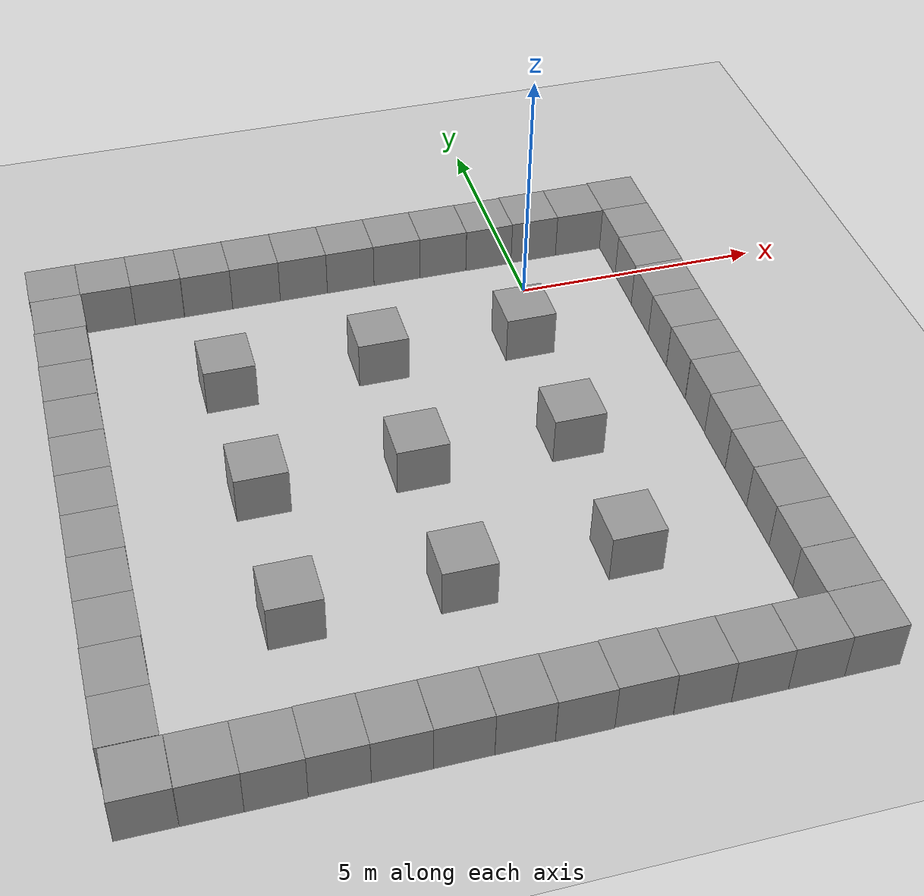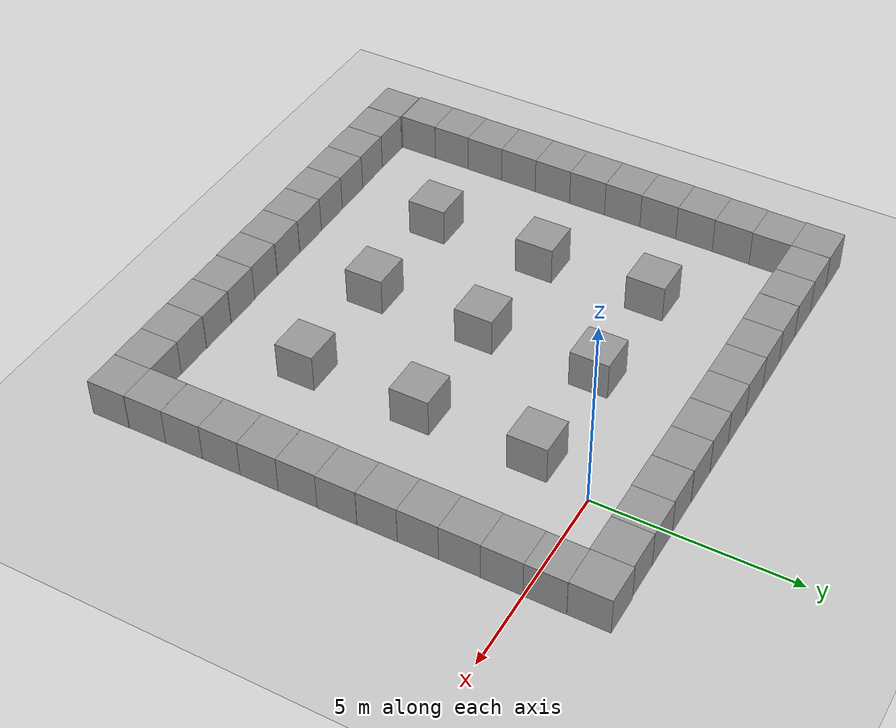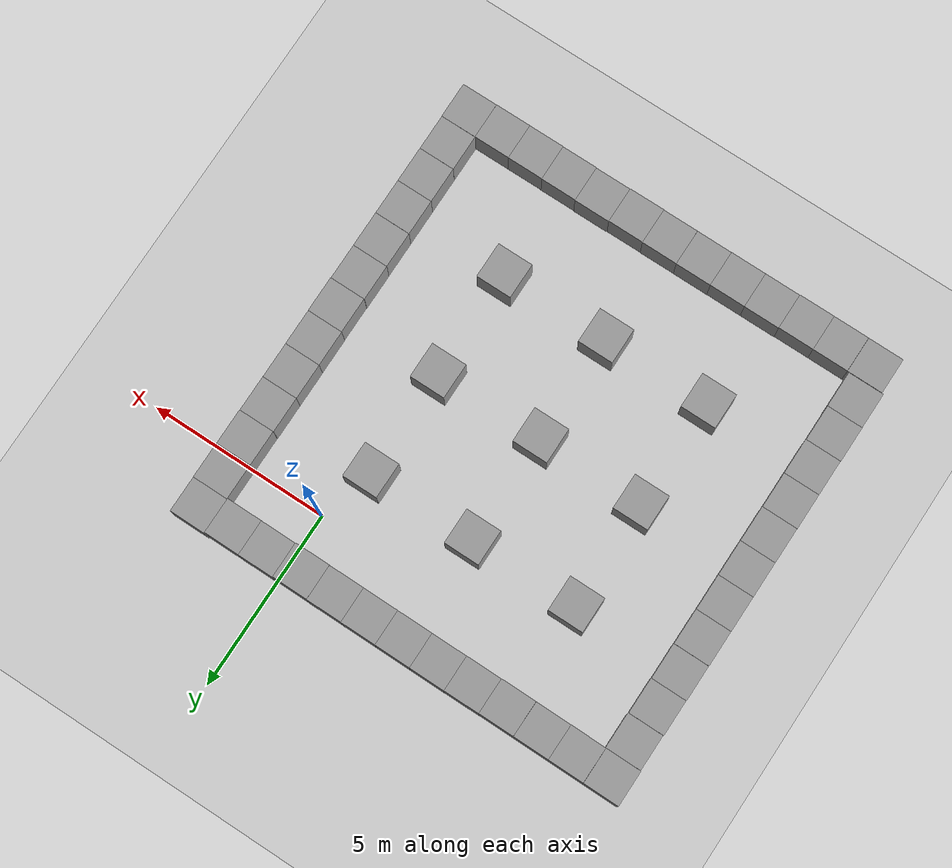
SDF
<sdf version="1.6">
 <world name="default">
  <light name="sun" type="directional">
   <pose>0 0 10 0 -0 0</pose>
   <diffuse>0.8 0.8 0.8 1</diffuse>
   <specular>0.1 0.1 0.1 1</specular>
   <attenuation>
    <range>1000</range>
    <constant>0.9</constant>
    <linear>0.01</linear>
    <quadratic>0.001</quadratic>
   </attenuation>
   <direction>-0.5 0.5 -1</direction>
  </light>
  <model name="ground_plane">
   <static>1</static>
   <link name="link">
    <collision name="collision">
     <geometry><plane><normal>0 0 1</normal><size>100 100</size></plane></geometry>
     <surface><friction><ode><mu>100</mu><mu2>50</mu2></ode></friction></surface>
    </collision>
    <visual name="visual">
     <cast_shadows>0</cast_shadows>
     <geometry><plane><normal>0 0 1</normal><size>100 100</size></plane></geometry>
     <material>
      <script><uri>file://media/materials/scripts/gazebo.material</uri><name>Gazebo/Grey</name></script>
     </material>
    </visual>
   </link>
  </model>
  <gravity>0 0 -9.8</gravity>
  <magnetic_field>6e-06 2.3e-05 -4.2e-05</magnetic_field>
  <atmosphere type="adiabatic"/>
  <physics name="default_physics" default="0" type="ode">
   <max_step_size>0.001</max_step_size>
   <real_time_factor>1</real_time_factor>
   <real_time_update_rate>1000</real_time_update_rate>
  </physics>
  <scene><ambient>0.4 0.4 0.4 1</ambient><background>0.7 0.7 0.7 1</background><shadows>1</shadows></scene>
  <spherical_coordinates>
   <surface_model>EARTH_WGS84</surface_model>
   <latitude_deg>0</latitude_deg>
   <longitude_deg>0</longitude_deg>
   <elevation>0</elevation>
   <heading_deg>0</heading_deg>
  </spherical_coordinates>
  <model name="unit_box_0_3">
   <pose>-0.485006 1.46415 0.5 0 0 -0.000417</pose>
   <link name="link">
    <inertial>
     <mass>1</mass>
     <inertia>
      <ixx>0.166667</ixx>
      <ixy>0</ixy>
      <ixz>0</ixz>
      <iyy>0.166667</iyy>
      <iyz>0</iyz>
      <izz>0.166667</izz>
     </inertia>
    </inertial>
    <collision name="collision"><geometry><box><size>1 1 1</size></box></geometry></collision>
    <visual name="visual">
     <geometry><box><size>1 1 1</size></box></geometry>
     <material>
      <script><name>Gazebo/Grey</name><uri>file://media/materials/scripts/gazebo.material</uri></script>
     </material>
    </visual>
   </link>
  </model>
  <model name="unit_box_0_4">
   <pose>0.515009 1.47743 0.5 0 0 -0.000413</pose>
   <link name="link">
    <inertial>
     <mass>1</mass>
     <inertia>
      <ixx>0.166667</ixx>
      <ixy>0</ixy>
      <ixz>0</ixz>
      <iyy>0.166667</iyy>
      <iyz>0</iyz>
      <izz>0.166667</izz>
     </inertia>
    </inertial>
    <collision name="collision"><geometry><box><size>1 1 1</size></box></geometry></collision>
    <visual name="visual">
     <geometry><box><size>1 1 1</size></box></geometry>
     <material>
      <script><name>Gazebo/Grey</name><uri>file://media/materials/scripts/gazebo.material</uri></script>
     </material>
    </visual>
   </link>
  </model>
  <model name="unit_box_0_5">
   <pose>1.51501 1.4753 0.499995 -1e-05 -0 -0.000414</pose>
   <link name="link">
    <inertial>
     <mass>1</mass>
     <inertia>
      <ixx>0.166667</ixx>
      <ixy>0</ixy>
      <ixz>0</ixz>
      <iyy>0.166667</iyy>
      <iyz>0</iyz>
      <izz>0.166667</izz>
     </inertia>
    </inertial>
    <collision name="collision"><geometry><box><size>1 1 1</size></box></geometry></collision>
    <visual name="visual">
     <geometry><box><size>1 1 1</size></box></geometry>
     <material>
      <script><name>Gazebo/Grey</name><uri>file://media/materials/scripts/gazebo.material</uri></script>
     </material>
    </visual>
   </link>
  </model>
  <model name="unit_box_0_6">
   <pose>-1.4854 1.46961 0.499995 0 1e-05 -0.001221</pose>
   <link name="link">
    <inertial>
     <mass>1</mass>
     <inertia>
      <ixx>0.166667</ixx>
      <ixy>0</ixy>
      <ixz>0</ixz>
      <iyy>0.166667</iyy>
      <iyz>0</iyz>
      <izz>0.166667</izz>
     </inertia>
    </inertial>
    <collision name="collision"><geometry><box><size>1 1 1</size></box></geometry></collision>
    <visual name="visual">
     <geometry><box><size>1 1 1</size></box></geometry>
     <material>
      <script><name>Gazebo/Grey</name><uri>file://media/materials/scripts/gazebo.material</uri></script>
     </material>
    </visual>
   </link>
  </model>
  <model name="unit_box_0_7">
   <pose>-2.48543 1.47308 0.499995 -1e-05 -0 -0.001284</pose>
   <link name="link">
    <inertial>
     <mass>1</mass>
     <inertia>
      <ixx>0.166667</ixx>
      <ixy>0</ixy>
      <ixz>0</ixz>
      <iyy>0.166667</iyy>
      <iyz>0</iyz>
      <izz>0.166667</izz>
     </inertia>
    </inertial>
    <collision name="collision"><geometry><box><size>1 1 1</size></box></geometry></collision>
    <visual name="visual">
     <geometry><box><size>1 1 1</size></box></geometry>
     <material>
      <script><name>Gazebo/Grey</name><uri>file://media/materials/scripts/gazebo.material</uri></script>
     </material>
    </visual>
   </link>
  </model>
  <model name="unit_box_0_8">
   <pose>2.51506 1.4973 0.499995 -1e-05 -0 -0.000355</pose>
   <link name="link">
    <inertial>
     <mass>1</mass>
     <inertia>
      <ixx>0.166667</ixx>
      <ixy>0</ixy>
      <ixz>0</ixz>
      <iyy>0.166667</iyy>
      <iyz>0</iyz>
      <izz>0.166667</izz>
     </inertia>
    </inertial>
    <collision name="collision"><geometry><box><size>1 1 1</size></box></geometry></collision>
    <visual name="visual">
     <geometry><box><size>1 1 1</size></box></geometry>
     <material>
      <script><name>Gazebo/Grey</name><uri>file://media/materials/scripts/gazebo.material</uri></script>
     </material>
    </visual>
   </link>
  </model>
  <model name="unit_box_0_9">
   <pose>-3.48544 1.47526 0.499995 -0 1e-05 -0.001293</pose>
   <link name="link">
    <inertial>
     <mass>1</mass>
     <inertia>
      <ixx>0.166667</ixx>
      <ixy>0</ixy>
      <ixz>0</ixz>
      <iyy>0.166667</iyy>
      <iyz>0</iyz>
      <izz>0.166667</izz>
     </inertia>
    </inertial>
    <collision name="collision"><geometry><box><size>1 1 1</size></box></geometry></collision>
    <visual name="visual">
     <geometry><box><size>1 1 1</size></box></geometry>
     <material>
      <script><name>Gazebo/Grey</name><uri>file://media/materials/scripts/gazebo.material</uri></script>
     </material>
    </visual>
   </link>
  </model>
  <model name="unit_box_0_10">
   <pose>-4.48546 1.47865 0.499995 0 -1e-05 -0.001316</pose>
   <link name="link">
    <inertial>
     <mass>1</mass>
     <inertia>
      <ixx>0.166667</ixx>
      <ixy>0</ixy>
      <ixz>0</ixz>
      <iyy>0.166667</iyy>
      <iyz>0</iyz>
      <izz>0.166667</izz>
     </inertia>
    </inertial>
    <collision name="collision"><geometry><box><size>1 1 1</size></box></geometry></collision>
    <visual name="visual">
     <geometry><box><size>1 1 1</size></box></geometry>
     <material>
      <script><name>Gazebo/Grey</name><uri>file://media/materials/scripts/gazebo.material</uri></script>
     </material>
    </visual>
   </link>
  </model>
  <model name="unit_box_0_11">
   <pose>-5.48546 1.47611 0.5 0 0 -0.001314</pose>
   <link name="link">
    <inertial>
     <mass>1</mass>
     <inertia>
      <ixx>0.166667</ixx>
      <ixy>0</ixy>
      <ixz>0</ixz>
      <iyy>0.166667</iyy>
      <iyz>0</iyz>
      <izz>0.166667</izz>
     </inertia>
    </inertial>
    <collision name="collision"><geometry><box><size>1 1 1</size></box></geometry></collision>
    <visual name="visual">
     <geometry><box><size>1 1 1</size></box></geometry>
     <material>
      <script><name>Gazebo/Grey</name><uri>file://media/materials/scripts/gazebo.material</uri></script>
     </material>
    </visual>
   </link>
  </model>
  <model name="unit_box_0_28">
   <pose>2.51081 -6.50288 0.499995 1e-05 -0 -7.6e-05</pose>
   <link name="link">
    <inertial>
     <mass>1</mass>
     <inertia>
      <ixx>0.166667</ixx>
      <ixy>0</ixy>
      <ixz>0</ixz>
      <iyy>0.166667</iyy>
      <iyz>0</iyz>
      <izz>0.166667</izz>
     </inertia>
    </inertial>
    <collision name="collision"><geometry><box><size>1 1 1</size></box></geometry></collision>
    <visual name="visual">
     <geometry><box><size>1 1 1</size></box></geometry>
     <material>
      <script><name>Gazebo/Grey</name><uri>file://media/materials/scripts/gazebo.material</uri></script>
     </material>
    </visual>
   </link>
  </model>
  <model name="unit_box_0_29">
   <pose>2.50829 -5.50283 0.499995 -1e-05 -0 -0.000155</pose>
   <link name="link">
    <inertial>
     <mass>1</mass>
     <inertia>
      <ixx>0.166667</ixx>
      <ixy>0</ixy>
      <ixz>0</ixz>
      <iyy>0.166667</iyy>
      <iyz>0</iyz>
      <izz>0.166667</izz>
     </inertia>
    </inertial>
    <collision name="collision"><geometry><box><size>1 1 1</size></box></geometry></collision>
    <visual name="visual">
     <geometry><box><size>1 1 1</size></box></geometry>
     <material>
      <script><name>Gazebo/Grey</name><uri>file://media/materials/scripts/gazebo.material</uri></script>
     </material>
    </visual>
   </link>
  </model>
  <model name="unit_box_0_30">
   <pose>2.51749 -4.50282 0.499995 9e-06 0 -0.000176</pose>
   <link name="link">
    <inertial>
     <mass>1</mass>
     <inertia>
      <ixx>0.166667</ixx>
      <ixy>0</ixy>
      <ixz>0</ixz>
      <iyy>0.166667</iyy>
      <iyz>0</iyz>
      <izz>0.166667</izz>
     </inertia>
    </inertial>
    <collision name="collision"><geometry><box><size>1 1 1</size></box></geometry></collision>
    <visual name="visual">
     <geometry><box><size>1 1 1</size></box></geometry>
     <material>
      <script><name>Gazebo/Grey</name><uri>file://media/materials/scripts/gazebo.material</uri></script>
     </material>
    </visual>
   </link>
  </model>
  <model name="unit_box_0_31">
   <pose>2.51174 -3.50281 0.499995 -9e-06 -0 -0.000174</pose>
   <link name="link">
    <inertial>
     <mass>1</mass>
     <inertia>
      <ixx>0.166667</ixx>
      <ixy>0</ixy>
      <ixz>0</ixz>
      <iyy>0.166667</iyy>
      <iyz>0</iyz>
      <izz>0.166667</izz>
     </inertia>
    </inertial>
    <collision name="collision"><geometry><box><size>1 1 1</size></box></geometry></collision>
    <visual name="visual">
     <geometry><box><size>1 1 1</size></box></geometry>
     <material>
      <script><name>Gazebo/Grey</name><uri>file://media/materials/scripts/gazebo.material</uri></script>
     </material>
    </visual>
   </link>
  </model>
  <model name="unit_box_0_32">
   <pose>2.50817 -2.50282 0.499995 1e-05 -0 -0.000177</pose>
   <link name="link">
    <inertial>
     <mass>1</mass>
     <inertia>
      <ixx>0.166667</ixx>
      <ixy>0</ixy>
      <ixz>0</ixz>
      <iyy>0.166667</iyy>
      <iyz>0</iyz>
      <izz>0.166667</izz>
     </inertia>
    </inertial>
    <collision name="collision"><geometry><box><size>1 1 1</size></box></geometry></collision>
    <visual name="visual">
     <geometry><box><size>1 1 1</size></box></geometry>
     <material>
      <script><name>Gazebo/Grey</name><uri>file://media/materials/scripts/gazebo.material</uri></script>
     </material>
    </visual>
   </link>
  </model>
  <model name="unit_box_0_34">
   <pose>2.50945 -1.5028 0.499995 -1e-05 -0 -0.000172</pose>
   <link name="link">
    <inertial>
     <mass>1</mass>
     <inertia>
      <ixx>0.166667</ixx>
      <ixy>0</ixy>
      <ixz>0</ixz>
      <iyy>0.166667</iyy>
      <iyz>0</iyz>
      <izz>0.166667</izz>
     </inertia>
    </inertial>
    <collision name="collision"><geometry><box><size>1 1 1</size></box></geometry></collision>
    <visual name="visual">
     <geometry><box><size>1 1 1</size></box></geometry>
     <material>
      <script><name>Gazebo/Grey</name><uri>file://media/materials/scripts/gazebo.material</uri></script>
     </material>
    </visual>
   </link>
  </model>
  <model name="unit_box_0_35">
   <pose>2.51729 -0.502807 0.499995 1e-05 -0 -0.000177</pose>
   <link name="link">
    <inertial>
     <mass>1</mass>
     <inertia>
      <ixx>0.166667</ixx>
      <ixy>0</ixy>
      <ixz>0</ixz>
      <iyy>0.166667</iyy>
      <iyz>0</iyz>
      <izz>0.166667</izz>
     </inertia>
    </inertial>
    <collision name="collision"><geometry><box><size>1 1 1</size></box></geometry></collision>
    <visual name="visual">
     <geometry><box><size>1 1 1</size></box></geometry>
     <material>
      <script><name>Gazebo/Grey</name><uri>file://media/materials/scripts/gazebo.material</uri></script>
     </material>
    </visual>
   </link>
  </model>
  <model name="unit_box_0_36">
   <pose>2.52058 0.497204 0.499995 1e-05 -0 -0.000199</pose>
   <link name="link">
    <inertial>
     <mass>1</mass>
     <inertia>
      <ixx>0.166667</ixx>
      <ixy>0</ixy>
      <ixz>0</ixz>
      <iyy>0.166667</iyy>
      <iyz>0</iyz>
      <izz>0.166667</izz>
     </inertia>
    </inertial>
    <collision name="collision"><geometry><box><size>1 1 1</size></box></geometry></collision>
    <visual name="visual">
     <geometry><box><size>1 1 1</size></box></geometry>
     <material>
      <script><name>Gazebo/Grey</name><uri>file://media/materials/scripts/gazebo.material</uri></script>
     </material>
    </visual>
   </link>
  </model>
  <model name="unit_box_0">
   <pose>-0.515201 -1.52723 0.499995 1e-05 -0 0</pose>
   <link name="link">
    <inertial>
     <mass>1</mass>
     <inertia>
      <ixx>0.166667</ixx>
      <ixy>0</ixy>
      <ixz>0</ixz>
      <iyy>0.166667</iyy>
      <iyz>0</iyz>
      <izz>0.166667</izz>
     </inertia>
    </inertial>
    <collision name="collision"><geometry><box><size>1 1 1</size></box></geometry></collision>
    <visual name="visual">
     <geometry><box><size>1 1 1</size></box></geometry>
     <material>
      <script><name>Gazebo/Grey</name><uri>file://media/materials/scripts/gazebo.material</uri></script>
     </material>
    </visual>
   </link>
  </model>
  <model name="unit_box_1">
   <pose>-0.520415 -4.49985 0.499995 1e-05 -0 0</pose>
   <link name="link">
    <inertial>
     <mass>1</mass>
     <inertia>
      <ixx>0.166667</ixx>
      <ixy>0</ixy>
      <ixz>0</ixz>
      <iyy>0.166667</iyy>
      <iyz>0</iyz>
      <izz>0.166667</izz>
     </inertia>
    </inertial>
    <collision name="collision"><geometry><box><size>1 1 1</size></box></geometry></collision>
    <visual name="visual">
     <geometry><box><size>1 1 1</size></box></geometry>
     <material>
      <script><name>Gazebo/Grey</name><uri>file://media/materials/scripts/gazebo.material</uri></script>
     </material>
    </visual>
   </link>
  </model>
  <model name="unit_box_2">
   <pose>-0.495698 -7.52249 0.499995 -0 -1e-05 0.000151</pose>
   <link name="link">
    <inertial>
     <mass>1</mass>
     <inertia>
      <ixx>0.166667</ixx>
      <ixy>0</ixy>
      <ixz>0</ixz>
      <iyy>0.166667</iyy>
      <iyz>0</iyz>
      <izz>0.166667</izz>
     </inertia>
    </inertial>
    <collision name="collision"><geometry><box><size>1 1 1</size></box></geometry></collision>
    <visual name="visual">
     <geometry><box><size>1 1 1</size></box></geometry>
     <material>
      <script><name>Gazebo/Grey</name><uri>file://media/materials/scripts/gazebo.material</uri></script>
     </material>
    </visual>
   </link>
  </model>
  <model name="unit_box_3">
   <pose>2.51212 -7.50322 0.499995 -1e-05 -0 0.000623</pose>
   <link name="link">
    <inertial>
     <mass>1</mass>
     <inertia>
      <ixx>0.166667</ixx>
      <ixy>0</ixy>
      <ixz>0</ixz>
      <iyy>0.166667</iyy>
      <iyz>0</iyz>
      <izz>0.166667</izz>
     </inertia>
    </inertial>
    <collision name="collision"><geometry><box><size>1 1 1</size></box></geometry></collision>
    <visual name="visual">
     <geometry><box><size>1 1 1</size></box></geometry>
     <material>
      <script><name>Gazebo/Grey</name><uri>file://media/materials/scripts/gazebo.material</uri></script>
     </material>
    </visual>
   </link>
  </model>
  <model name="unit_box_4">
   <pose>-1.47391 -10.5015 0.499995 0 1e-05 0.003189</pose>
   <link name="link">
    <inertial>
     <mass>1</mass>
     <inertia>
      <ixx>0.166667</ixx>
      <ixy>0</ixy>
      <ixz>0</ixz>
      <iyy>0.166667</iyy>
      <iyz>0</iyz>
      <izz>0.166667</izz>
     </inertia>
    </inertial>
    <collision name="collision"><geometry><box><size>1 1 1</size></box></geometry></collision>
    <visual name="visual">
     <geometry><box><size>1 1 1</size></box></geometry>
     <material>
      <script><name>Gazebo/Grey</name><uri>file://media/materials/scripts/gazebo.material</uri></script>
     </material>
    </visual>
   </link>
  </model>
  <model name="unit_box_5_0">
   <pose>-0.473783 -10.5096 0.499995 -1e-05 -0 0.003101</pose>
   <link name="link">
    <inertial>
     <mass>1</mass>
     <inertia>
      <ixx>0.166667</ixx>
      <ixy>0</ixy>
      <ixz>0</ixz>
      <iyy>0.166667</iyy>
      <iyz>0</iyz>
      <izz>0.166667</izz>
     </inertia>
    </inertial>
    <collision name="collision"><geometry><box><size>1 1 1</size></box></geometry></collision>
    <visual name="visual">
     <geometry><box><size>1 1 1</size></box></geometry>
     <material>
      <script><name>Gazebo/Grey</name><uri>file://media/materials/scripts/gazebo.material</uri></script>
     </material>
    </visual>
   </link>
  </model>
  <model name="unit_box_5_1">
   <pose>0.526451 -10.5137 0.499995 0 -1e-05 0.003181</pose>
   <link name="link">
    <inertial>
     <mass>1</mass>
     <inertia>
      <ixx>0.166667</ixx>
      <ixy>0</ixy>
      <ixz>0</ixz>
      <iyy>0.166667</iyy>
      <iyz>0</iyz>
      <izz>0.166667</izz>
     </inertia>
    </inertial>
    <collision name="collision"><geometry><box><size>1 1 1</size></box></geometry></collision>
    <visual name="visual">
     <geometry><box><size>1 1 1</size></box></geometry>
     <material>
      <script><name>Gazebo/Grey</name><uri>file://media/materials/scripts/gazebo.material</uri></script>
     </material>
    </visual>
   </link>
  </model>
  <model name="unit_box_5_2">
   <pose>1.52651 -10.5118 0.499995 0 1e-05 0.003169</pose>
   <link name="link">
    <inertial>
     <mass>1</mass>
     <inertia>
      <ixx>0.166667</ixx>
      <ixy>0</ixy>
      <ixz>0</ixz>
      <iyy>0.166667</iyy>
      <iyz>0</iyz>
      <izz>0.166667</izz>
     </inertia>
    </inertial>
    <collision name="collision"><geometry><box><size>1 1 1</size></box></geometry></collision>
    <visual name="visual">
     <geometry><box><size>1 1 1</size></box></geometry>
     <material>
      <script><name>Gazebo/Grey</name><uri>file://media/materials/scripts/gazebo.material</uri></script>
     </material>
    </visual>
   </link>
  </model>
  <model name="unit_box_5_3">
   <pose>2.51399 -8.50356 0.499995 -1e-05 0 0.001292</pose>
   <link name="link">
    <inertial>
     <mass>1</mass>
     <inertia>
      <ixx>0.166667</ixx>
      <ixy>0</ixy>
      <ixz>0</ixz>
      <iyy>0.166667</iyy>
      <iyz>0</iyz>
      <izz>0.166667</izz>
     </inertia>
    </inertial>
    <collision name="collision"><geometry><box><size>1 1 1</size></box></geometry></collision>
    <visual name="visual">
     <geometry><box><size>1 1 1</size></box></geometry>
     <material>
      <script><name>Gazebo/Grey</name><uri>file://media/materials/scripts/gazebo.material</uri></script>
     </material>
    </visual>
   </link>
  </model>
  <model name="unit_box_5_4">
   <pose>-2.47388 -10.5161 0.499995 1e-05 -0 0.003189</pose>
   <link name="link">
    <inertial>
     <mass>1</mass>
     <inertia>
      <ixx>0.166667</ixx>
      <ixy>0</ixy>
      <ixz>0</ixz>
      <iyy>0.166667</iyy>
      <iyz>0</iyz>
      <izz>0.166667</izz>
     </inertia>
    </inertial>
    <collision name="collision"><geometry><box><size>1 1 1</size></box></geometry></collision>
    <visual name="visual">
     <geometry><box><size>1 1 1</size></box></geometry>
     <material>
      <script><name>Gazebo/Grey</name><uri>file://media/materials/scripts/gazebo.material</uri></script>
     </material>
    </visual>
   </link>
  </model>
  <model name="unit_box_5_5">
   <pose>2.51461 -9.50426 0.499995 -1e-05 -0 0.002692</pose>
   <link name="link">
    <inertial>
     <mass>1</mass>
     <inertia>
      <ixx>0.166667</ixx>
      <ixy>0</ixy>
      <ixz>0</ixz>
      <iyy>0.166667</iyy>
      <iyz>0</iyz>
      <izz>0.166667</izz>
     </inertia>
    </inertial>
    <collision name="collision"><geometry><box><size>1 1 1</size></box></geometry></collision>
    <visual name="visual">
     <geometry><box><size>1 1 1</size></box></geometry>
     <material>
      <script><name>Gazebo/Grey</name><uri>file://media/materials/scripts/gazebo.material</uri></script>
     </material>
    </visual>
   </link>
  </model>
  <model name="unit_box_5_6">
   <pose>2.52662 -10.5055 0.499995 0 -1e-05 0.003363</pose>
   <link name="link">
    <inertial>
     <mass>1</mass>
     <inertia>
      <ixx>0.166667</ixx>
      <ixy>0</ixy>
      <ixz>0</ixz>
      <iyy>0.166667</iyy>
      <iyz>0</iyz>
      <izz>0.166667</izz>
     </inertia>
    </inertial>
    <collision name="collision"><geometry><box><size>1 1 1</size></box></geometry></collision>
    <visual name="visual">
     <geometry><box><size>1 1 1</size></box></geometry>
     <material>
      <script><name>Gazebo/Grey</name><uri>file://media/materials/scripts/gazebo.material</uri></script>
     </material>
    </visual>
   </link>
  </model>
  <model name="unit_box_5_7">
   <pose>-6.48558 1.47192 0.499995 -1e-05 -0 -0.001453</pose>
   <link name="link">
    <inertial>
     <mass>1</mass>
     <inertia>
      <ixx>0.166667</ixx>
      <ixy>0</ixy>
      <ixz>0</ixz>
      <iyy>0.166667</iyy>
      <iyz>0</iyz>
      <izz>0.166667</izz>
     </inertia>
    </inertial>
    <collision name="collision"><geometry><box><size>1 1 1</size></box></geometry></collision>
    <visual name="visual">
     <geometry><box><size>1 1 1</size></box></geometry>
     <material>
      <script><name>Gazebo/Grey</name><uri>file://media/materials/scripts/gazebo.material</uri></script>
     </material>
    </visual>
   </link>
  </model>
  <model name="unit_box_5_8">
   <pose>-7.48807 1.476 0.499995 1e-05 -0 -0.006394</pose>
   <link name="link">
    <inertial>
     <mass>1</mass>
     <inertia>
      <ixx>0.166667</ixx>
      <ixy>0</ixy>
      <ixz>0</ixz>
      <iyy>0.166667</iyy>
      <iyz>0</iyz>
      <izz>0.166667</izz>
     </inertia>
    </inertial>
    <collision name="collision"><geometry><box><size>1 1 1</size></box></geometry></collision>
    <visual name="visual">
     <geometry><box><size>1 1 1</size></box></geometry>
     <material>
      <script><name>Gazebo/Grey</name><uri>file://media/materials/scripts/gazebo.material</uri></script>
     </material>
    </visual>
   </link>
  </model>
  <model name="unit_box_5_9">
   <pose>-8.48807 1.48038 0.499995 1e-05 -0 -0.006392</pose>
   <link name="link">
    <inertial>
     <mass>1</mass>
     <inertia>
      <ixx>0.166667</ixx>
      <ixy>0</ixy>
      <ixz>0</ixz>
      <iyy>0.166667</iyy>
      <iyz>0</iyz>
      <izz>0.166667</izz>
     </inertia>
    </inertial>
    <collision name="collision"><geometry><box><size>1 1 1</size></box></geometry></collision>
    <visual name="visual">
     <geometry><box><size>1 1 1</size></box></geometry>
     <material>
      <script><name>Gazebo/Grey</name><uri>file://media/materials/scripts/gazebo.material</uri></script>
     </material>
    </visual>
   </link>
  </model>
  <model name="unit_box_5_10">
   <pose>-9.49115 1.48362 0.5 0 0 -0.000304</pose>
   <link name="link">
    <inertial>
     <mass>1</mass>
     <inertia>
      <ixx>0.166667</ixx>
      <ixy>0</ixy>
      <ixz>0</ixz>
      <iyy>0.166667</iyy>
      <iyz>0</iyz>
      <izz>0.166667</izz>
     </inertia>
    </inertial>
    <collision name="collision"><geometry><box><size>1 1 1</size></box></geometry></collision>
    <visual name="visual">
     <geometry><box><size>1 1 1</size></box></geometry>
     <material>
      <script><name>Gazebo/Grey</name><uri>file://media/materials/scripts/gazebo.material</uri></script>
     </material>
    </visual>
   </link>
  </model>
  <model name="unit_box_5_11">
   <pose>-3.47406 -10.5125 0.499995 0 1e-05 0.0031</pose>
   <link name="link">
    <inertial>
     <mass>1</mass>
     <inertia>
      <ixx>0.166667</ixx>
      <ixy>0</ixy>
      <ixz>0</ixz>
      <iyy>0.166667</iyy>
      <iyz>0</iyz>
      <izz>0.166667</izz>
     </inertia>
    </inertial>
    <collision name="collision"><geometry><box><size>1 1 1</size></box></geometry></collision>
    <visual name="visual">
     <geometry><box><size>1 1 1</size></box></geometry>
     <material>
      <script><name>Gazebo/Grey</name><uri>file://media/materials/scripts/gazebo.material</uri></script>
     </material>
    </visual>
   </link>
  </model>
  <model name="unit_box_5_12">
   <pose>-4.47461 -10.5113 0.499995 1e-05 0 0.002137</pose>
   <link name="link">
    <inertial>
     <mass>1</mass>
     <inertia>
      <ixx>0.166667</ixx>
      <ixy>0</ixy>
      <ixz>0</ixz>
      <iyy>0.166667</iyy>
      <iyz>0</iyz>
      <izz>0.166667</izz>
     </inertia>
    </inertial>
    <collision name="collision"><geometry><box><size>1 1 1</size></box></geometry></collision>
    <visual name="visual">
     <geometry><box><size>1 1 1</size></box></geometry>
     <material>
      <script><name>Gazebo/Grey</name><uri>file://media/materials/scripts/gazebo.material</uri></script>
     </material>
    </visual>
   </link>
  </model>
  <model name="unit_box_5_13">
   <pose>-5.4749 -10.5159 0.499995 -1e-05 -0 0.001541</pose>
   <link name="link">
    <inertial>
     <mass>1</mass>
     <inertia>
      <ixx>0.166667</ixx>
      <ixy>0</ixy>
      <ixz>0</ixz>
      <iyy>0.166667</iyy>
      <iyz>0</iyz>
      <izz>0.166667</izz>
     </inertia>
    </inertial>
    <collision name="collision"><geometry><box><size>1 1 1</size></box></geometry></collision>
    <visual name="visual">
     <geometry><box><size>1 1 1</size></box></geometry>
     <material>
      <script><name>Gazebo/Grey</name><uri>file://media/materials/scripts/gazebo.material</uri></script>
     </material>
    </visual>
   </link>
  </model>
  <model name="unit_box_5_14">
   <pose>-6.47495 -10.5167 0.499995 1e-05 0 0.00147</pose>
   <link name="link">
    <inertial>
     <mass>1</mass>
     <inertia>
      <ixx>0.166667</ixx>
      <ixy>0</ixy>
      <ixz>0</ixz>
      <iyy>0.166667</iyy>
      <iyz>0</iyz>
      <izz>0.166667</izz>
     </inertia>
    </inertial>
    <collision name="collision"><geometry><box><size>1 1 1</size></box></geometry></collision>
    <visual name="visual">
     <geometry><box><size>1 1 1</size></box></geometry>
     <material>
      <script><name>Gazebo/Grey</name><uri>file://media/materials/scripts/gazebo.material</uri></script>
     </material>
    </visual>
   </link>
  </model>
  <model name="unit_box_5_15">
   <pose>-7.47495 -10.5285 0.499995 0 -1e-05 0.001472</pose>
   <link name="link">
    <inertial>
     <mass>1</mass>
     <inertia>
      <ixx>0.166667</ixx>
      <ixy>0</ixy>
      <ixz>0</ixz>
      <iyy>0.166667</iyy>
      <iyz>0</iyz>
      <izz>0.166667</izz>
     </inertia>
    </inertial>
    <collision name="collision"><geometry><box><size>1 1 1</size></box></geometry></collision>
    <visual name="visual">
     <geometry><box><size>1 1 1</size></box></geometry>
     <material>
      <script><name>Gazebo/Grey</name><uri>file://media/materials/scripts/gazebo.material</uri></script>
     </material>
    </visual>
   </link>
  </model>
  <model name="unit_box_5_16">
   <pose>-8.47494 -10.5288 0.499995 0 1e-05 0.001473</pose>
   <link name="link">
    <inertial>
     <mass>1</mass>
     <inertia>
      <ixx>0.166667</ixx>
      <ixy>0</ixy>
      <ixz>0</ixz>
      <iyy>0.166667</iyy>
      <iyz>0</iyz>
      <izz>0.166667</izz>
     </inertia>
    </inertial>
    <collision name="collision"><geometry><box><size>1 1 1</size></box></geometry></collision>
    <visual name="visual">
     <geometry><box><size>1 1 1</size></box></geometry>
     <material>
      <script><name>Gazebo/Grey</name><uri>file://media/materials/scripts/gazebo.material</uri></script>
     </material>
    </visual>
   </link>
  </model>
  <model name="unit_box_5_17">
   <pose>-9.47979 -10.5268 0.499995 0 1e-05 0</pose>
   <link name="link">
    <inertial>
     <mass>1</mass>
     <inertia>
      <ixx>0.166667</ixx>
      <ixy>0</ixy>
      <ixz>0</ixz>
      <iyy>0.166667</iyy>
      <iyz>0</iyz>
      <izz>0.166667</izz>
     </inertia>
    </inertial>
    <collision name="collision"><geometry><box><size>1 1 1</size></box></geometry></collision>
    <visual name="visual">
     <geometry><box><size>1 1 1</size></box></geometry>
     <material>
      <script><name>Gazebo/Grey</name><uri>file://media/materials/scripts/gazebo.material</uri></script>
     </material>
    </visual>
   </link>
  </model>
  <model name="unit_box_5_18">
   <pose>-9.52678 -9.51802 0.499995 0 -1e-05 -0.000363</pose>
   <link name="link">
    <inertial>
     <mass>1</mass>
     <inertia>
      <ixx>0.166667</ixx>
      <ixy>0</ixy>
      <ixz>0</ixz>
      <iyy>0.166667</iyy>
      <iyz>0</iyz>
      <izz>0.166667</izz>
     </inertia>
    </inertial>
    <collision name="collision"><geometry><box><size>1 1 1</size></box></geometry></collision>
    <visual name="visual">
     <geometry><box><size>1 1 1</size></box></geometry>
     <material>
      <script><name>Gazebo/Grey</name><uri>file://media/materials/scripts/gazebo.material</uri></script>
     </material>
    </visual>
   </link>
  </model>
  <model name="unit_box_5_19">
   <pose>-9.53051 -8.51801 0.499995 -0 1e-05 -0.000364</pose>
   <link name="link">
    <inertial>
     <mass>1</mass>
     <inertia>
      <ixx>0.166667</ixx>
      <ixy>0</ixy>
      <ixz>0</ixz>
      <iyy>0.166667</iyy>
      <iyz>0</iyz>
      <izz>0.166667</izz>
     </inertia>
    </inertial>
    <collision name="collision"><geometry><box><size>1 1 1</size></box></geometry></collision>
    <visual name="visual">
     <geometry><box><size>1 1 1</size></box></geometry>
     <material>
      <script><name>Gazebo/Grey</name><uri>file://media/materials/scripts/gazebo.material</uri></script>
     </material>
    </visual>
   </link>
  </model>
  <model name="unit_box_5_20">
   <pose>-9.52038 -7.51801 0.499995 0 -1e-05 -0.000364</pose>
   <link name="link">
    <inertial>
     <mass>1</mass>
     <inertia>
      <ixx>0.166667</ixx>
      <ixy>0</ixy>
      <ixz>0</ixz>
      <iyy>0.166667</iyy>
      <iyz>0</iyz>
      <izz>0.166667</izz>
     </inertia>
    </inertial>
    <collision name="collision"><geometry><box><size>1 1 1</size></box></geometry></collision>
    <visual name="visual">
     <geometry><box><size>1 1 1</size></box></geometry>
     <material>
      <script><name>Gazebo/Grey</name><uri>file://media/materials/scripts/gazebo.material</uri></script>
     </material>
    </visual>
   </link>
  </model>
  <model name="unit_box_5_21">
   <pose>-9.52082 -6.51801 0.5 0 0 -0.000364</pose>
   <link name="link">
    <inertial>
     <mass>1</mass>
     <inertia>
      <ixx>0.166667</ixx>
      <ixy>0</ixy>
      <ixz>0</ixz>
      <iyy>0.166667</iyy>
      <iyz>0</iyz>
      <izz>0.166667</izz>
     </inertia>
    </inertial>
    <collision name="collision"><geometry><box><size>1 1 1</size></box></geometry></collision>
    <visual name="visual">
     <geometry><box><size>1 1 1</size></box></geometry>
     <material>
      <script><name>Gazebo/Grey</name><uri>file://media/materials/scripts/gazebo.material</uri></script>
     </material>
    </visual>
   </link>
  </model>
  <model name="unit_box_5_22">
   <pose>-9.51495 -5.51798 0.499995 -1e-05 -0 -0.000376</pose>
   <link name="link">
    <inertial>
     <mass>1</mass>
     <inertia>
      <ixx>0.166667</ixx>
      <ixy>0</ixy>
      <ixz>0</ixz>
      <iyy>0.166667</iyy>
      <iyz>0</iyz>
      <izz>0.166667</izz>
     </inertia>
    </inertial>
    <collision name="collision"><geometry><box><size>1 1 1</size></box></geometry></collision>
    <visual name="visual">
     <geometry><box><size>1 1 1</size></box></geometry>
     <material>
      <script><name>Gazebo/Grey</name><uri>file://media/materials/scripts/gazebo.material</uri></script>
     </material>
    </visual>
   </link>
  </model>
  <model name="unit_box_5_23">
   <pose>-9.5121 -4.51793 0.499995 1e-05 0 -0.000367</pose>
   <link name="link">
    <inertial>
     <mass>1</mass>
     <inertia>
      <ixx>0.166667</ixx>
      <ixy>0</ixy>
      <ixz>0</ixz>
      <iyy>0.166667</iyy>
      <iyz>0</iyz>
      <izz>0.166667</izz>
     </inertia>
    </inertial>
    <collision name="collision"><geometry><box><size>1 1 1</size></box></geometry></collision>
    <visual name="visual">
     <geometry><box><size>1 1 1</size></box></geometry>
     <material>
      <script><name>Gazebo/Grey</name><uri>file://media/materials/scripts/gazebo.material</uri></script>
     </material>
    </visual>
   </link>
  </model>
  <model name="unit_box_5_24">
   <pose>-9.51117 -3.51754 0.499995 1e-05 -0 0.000406</pose>
   <link name="link">
    <inertial>
     <mass>1</mass>
     <inertia>
      <ixx>0.166667</ixx>
      <ixy>0</ixy>
      <ixz>0</ixz>
      <iyy>0.166667</iyy>
      <iyz>0</iyz>
      <izz>0.166667</izz>
     </inertia>
    </inertial>
    <collision name="collision"><geometry><box><size>1 1 1</size></box></geometry></collision>
    <visual name="visual">
     <geometry><box><size>1 1 1</size></box></geometry>
     <material>
      <script><name>Gazebo/Grey</name><uri>file://media/materials/scripts/gazebo.material</uri></script>
     </material>
    </visual>
   </link>
  </model>
  <model name="unit_box_5_25">
   <pose>-9.50814 -2.51753 0.499995 -1e-05 -0 0.000406</pose>
   <link name="link">
    <inertial>
     <mass>1</mass>
     <inertia>
      <ixx>0.166667</ixx>
      <ixy>0</ixy>
      <ixz>0</ixz>
      <iyy>0.166667</iyy>
      <iyz>0</iyz>
      <izz>0.166667</izz>
     </inertia>
    </inertial>
    <collision name="collision"><geometry><box><size>1 1 1</size></box></geometry></collision>
    <visual name="visual">
     <geometry><box><size>1 1 1</size></box></geometry>
     <material>
      <script><name>Gazebo/Grey</name><uri>file://media/materials/scripts/gazebo.material</uri></script>
     </material>
    </visual>
   </link>
  </model>
  <model name="unit_box_5_26">
   <pose>-9.50202 -1.51679 0.499995 -1e-05 0 0.000481</pose>
   <link name="link">
    <inertial>
     <mass>1</mass>
     <inertia>
      <ixx>0.166667</ixx>
      <ixy>0</ixy>
      <ixz>0</ixz>
      <iyy>0.166667</iyy>
      <iyz>0</iyz>
      <izz>0.166667</izz>
     </inertia>
    </inertial>
    <collision name="collision"><geometry><box><size>1 1 1</size></box></geometry></collision>
    <visual name="visual">
     <geometry><box><size>1 1 1</size></box></geometry>
     <material>
      <script><name>Gazebo/Grey</name><uri>file://media/materials/scripts/gazebo.material</uri></script>
     </material>
    </visual>
   </link>
  </model>
  <model name="unit_box_5_27">
   <pose>-9.49201 -0.516776 0.5 0 -0 0.000486</pose>
   <link name="link">
    <inertial>
     <mass>1</mass>
     <inertia>
      <ixx>0.166667</ixx>
      <ixy>0</ixy>
      <ixz>0</ixz>
      <iyy>0.166667</iyy>
      <iyz>0</iyz>
      <izz>0.166667</izz>
     </inertia>
    </inertial>
    <collision name="collision"><geometry><box><size>1 1 1</size></box></geometry></collision>
    <visual name="visual">
     <geometry><box><size>1 1 1</size></box></geometry>
     <material>
      <script><name>Gazebo/Grey</name><uri>file://media/materials/scripts/gazebo.material</uri></script>
     </material>
    </visual>
   </link>
  </model>
  <model name="unit_box_5_28">
   <pose>-9.47585 0.483341 0.5 0 -0 0.000268</pose>
   <link name="link">
    <inertial>
     <mass>1</mass>
     <inertia>
      <ixx>0.166667</ixx>
      <ixy>0</ixy>
      <ixz>0</ixz>
      <iyy>0.166667</iyy>
      <iyz>0</iyz>
      <izz>0.166667</izz>
     </inertia>
    </inertial>
    <collision name="collision"><geometry><box><size>1 1 1</size></box></geometry></collision>
    <visual name="visual">
     <geometry><box><size>1 1 1</size></box></geometry>
     <material>
      <script><name>Gazebo/Grey</name><uri>file://media/materials/scripts/gazebo.material</uri></script>
     </material>
    </visual>
   </link>
  </model>
  <model name="unit_box_5_29">
   <pose>-3.50909 -1.51524 0.499995 -1e-05 0 0</pose>
   <link name="link">
    <inertial>
     <mass>1</mass>
     <inertia>
      <ixx>0.166667</ixx>
      <ixy>0</ixy>
      <ixz>0</ixz>
      <iyy>0.166667</iyy>
      <iyz>0</iyz>
      <izz>0.166667</izz>
     </inertia>
    </inertial>
    <collision name="collision"><geometry><box><size>1 1 1</size></box></geometry></collision>
    <visual name="visual">
     <geometry><box><size>1 1 1</size></box></geometry>
     <material>
      <script><name>Gazebo/Grey</name><uri>file://media/materials/scripts/gazebo.material</uri></script>
     </material>
    </visual>
   </link>
  </model>
  <model name="unit_box_5_30">
   <pose>-6.52072 -1.5247 0.499995 0 1e-05 0</pose>
   <link name="link">
    <inertial>
     <mass>1</mass>
     <inertia>
      <ixx>0.166667</ixx>
      <ixy>0</ixy>
      <ixz>0</ixz>
      <iyy>0.166667</iyy>
      <iyz>0</iyz>
      <izz>0.166667</izz>
     </inertia>
    </inertial>
    <collision name="collision"><geometry><box><size>1 1 1</size></box></geometry></collision>
    <visual name="visual">
     <geometry><box><size>1 1 1</size></box></geometry>
     <material>
      <script><name>Gazebo/Grey</name><uri>file://media/materials/scripts/gazebo.material</uri></script>
     </material>
    </visual>
   </link>
  </model>
  <model name="unit_box_5_31">
   <pose>-3.52551 -4.53468 0.499995 -1e-05 0 0</pose>
   <link name="link">
    <inertial>
     <mass>1</mass>
     <inertia>
      <ixx>0.166667</ixx>
      <ixy>0</ixy>
      <ixz>0</ixz>
      <iyy>0.166667</iyy>
      <iyz>0</iyz>
      <izz>0.166667</izz>
     </inertia>
    </inertial>
    <collision name="collision"><geometry><box><size>1 1 1</size></box></geometry></collision>
    <visual name="visual">
     <geometry><box><size>1 1 1</size></box></geometry>
     <material>
      <script><name>Gazebo/Grey</name><uri>file://media/materials/scripts/gazebo.material</uri></script>
     </material>
    </visual>
   </link>
  </model>
  <model name="unit_box_5_32">
   <pose>-3.50985 -7.51864 0.499995 0 1e-05 0</pose>
   <link name="link">
    <inertial>
     <mass>1</mass>
     <inertia>
      <ixx>0.166667</ixx>
      <ixy>0</ixy>
      <ixz>0</ixz>
      <iyy>0.166667</iyy>
      <iyz>0</iyz>
      <izz>0.166667</izz>
     </inertia>
    </inertial>
    <collision name="collision"><geometry><box><size>1 1 1</size></box></geometry></collision>
    <visual name="visual">
     <geometry><box><size>1 1 1</size></box></geometry>
     <material>
      <script><name>Gazebo/Grey</name><uri>file://media/materials/scripts/gazebo.material</uri></script>
     </material>
    </visual>
   </link>
  </model>
  <model name="unit_box_5_33">
   <pose>-6.48333 -4.4908 0.499995 -1e-05 0 0</pose>
   <link name="link">
    <inertial>
     <mass>1</mass>
     <inertia>
      <ixx>0.166667</ixx>
      <ixy>0</ixy>
      <ixz>0</ixz>
      <iyy>0.166667</iyy>
      <iyz>0</iyz>
      <izz>0.166667</izz>
     </inertia>
    </inertial>
    <collision name="collision"><geometry><box><size>1 1 1</size></box></geometry></collision>
    <visual name="visual">
     <geometry><box><size>1 1 1</size></box></geometry>
     <material>
      <script><name>Gazebo/Grey</name><uri>file://media/materials/scripts/gazebo.material</uri></script>
     </material>
    </visual>
   </link>
  </model>
  <model name="unit_box_5_34">
   <pose>-6.51436 -7.52583 0.5 0 -0 0</pose>
   <link name="link">
    <inertial>
     <mass>1</mass>
     <inertia>
      <ixx>0.166667</ixx>
      <ixy>0</ixy>
      <ixz>0</ixz>
      <iyy>0.166667</iyy>
      <iyz>0</iyz>
      <izz>0.166667</izz>
     </inertia>
    </inertial>
    <collision name="collision"><geometry><box><size>1 1 1</size></box></geometry></collision>
    <visual name="visual">
     <geometry><box><size>1 1 1</size></box></geometry>
     <material>
      <script><name>Gazebo/Grey</name><uri>file://media/materials/scripts/gazebo.material</uri></script>
     </material>
    </visual>
   </link>
  </model>
 </world>
</sdf>
